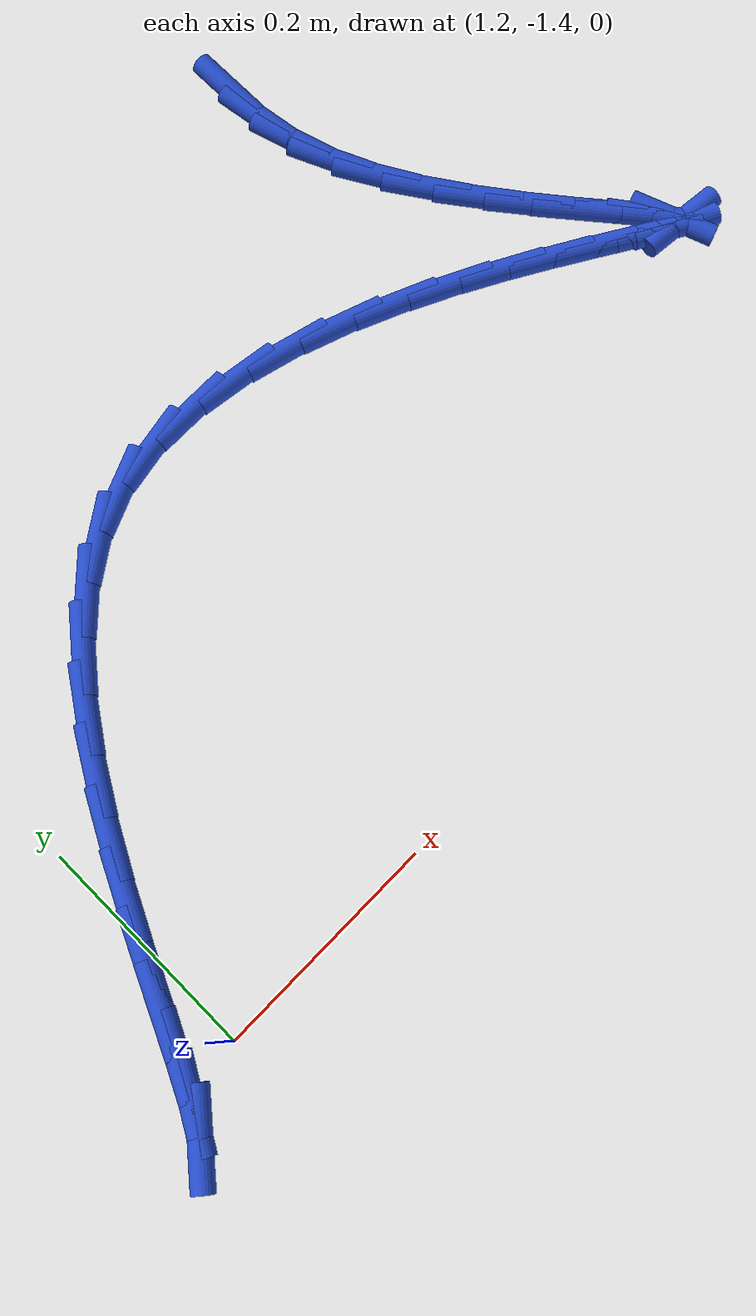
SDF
<sdf version="1.6">
 <world name="default">
  <model name="ground_plane">
   <static>1</static>
   <link name="link">
    <collision name="collision">
     <geometry><plane><normal>0 0 1</normal><size>100 100</size></plane></geometry>
     <surface><friction><ode><mu>100</mu><mu2>50</mu2></ode></friction></surface>
    </collision>
    <visual name="visual">
     <cast_shadows>0</cast_shadows>
     <geometry><plane><normal>0 0 1</normal><size>100 100</size></plane></geometry>
     <material>
      <script><uri>file://media/materials/scripts/gazebo.material</uri><name>Gazebo/WhiteGlow</name></script>
     </material>
    </visual>
   </link>
  </model>
  <model name="line">
   <link name="link_130">
    <pose>1.7752156417751612 -0.7982556049914572 0.01 0 1.57 1.5497536472109306</pose>
    <collision name="collision">
     <geometry><cylinder><radius>0.01</radius><length>0.08</length></cylinder></geometry>
    </collision>
    <visual name="visual">
     <material>
      <script><name>Gazebo/Blue</name><uri>file://media/materials/scripts/gazebo.material</uri></script>
     </material>
     <geometry><cylinder><radius>0.01</radius><length>0.08</length></cylinder></geometry>
    </visual>
   </link>
   <link name="link_131">
    <pose>1.7744203725148882 -0.8360431820624398 0.01 0 1.57 -1.450355094633576</pose>
    <collision name="collision">
     <geometry><cylinder><radius>0.01</radius><length>0.08</length></cylinder></geometry>
    </collision>
    <visual name="visual">
     <material>
      <script><name>Gazebo/Blue</name><uri>file://media/materials/scripts/gazebo.material</uri></script>
     </material>
     <geometry><cylinder><radius>0.01</radius><length>0.08</length></cylinder></geometry>
    </visual>
   </link>
   <link name="link_132">
    <pose>1.7790978041435388 -0.8746910152045829 0.01 0 1.57 -1.307838517691656</pose>
    <collision name="collision">
     <geometry><cylinder><radius>0.01</radius><length>0.08</length></cylinder></geometry>
    </collision>
    <visual name="visual">
     <material>
      <script><name>Gazebo/Blue</name><uri>file://media/materials/scripts/gazebo.material</uri></script>
     </material>
     <geometry><cylinder><radius>0.01</radius><length>0.08</length></cylinder></geometry>
    </visual>
   </link>
   <link name="link_133">
    <pose>1.7897375830611209 -0.9142160073864463 0.01 0 1.57 -1.1725079121888944</pose>
    <collision name="collision">
     <geometry><cylinder><radius>0.01</radius><length>0.08</length></cylinder></geometry>
    </collision>
    <visual name="visual">
     <material>
      <script><name>Gazebo/Blue</name><uri>file://media/materials/scripts/gazebo.material</uri></script>
     </material>
     <geometry><cylinder><radius>0.01</radius><length>0.08</length></cylinder></geometry>
    </visual>
   </link>
   <link name="link_134">
    <pose>1.8067232678781455 -0.954583421173247 0.01 0 1.57 -1.0672531473414502</pose>
    <collision name="collision">
     <geometry><cylinder><radius>0.01</radius><length>0.08</length></cylinder></geometry>
    </collision>
    <visual name="visual">
     <material>
      <script><name>Gazebo/Blue</name><uri>file://media/materials/scripts/gazebo.material</uri></script>
     </material>
     <geometry><cylinder><radius>0.01</radius><length>0.08</length></cylinder></geometry>
    </visual>
   </link>
   <link name="link_135">
    <pose>1.8290292264488128 -0.9950725666809562 0.01 0 1.57 -0.994632388908153</pose>
    <collision name="collision">
     <geometry><cylinder><radius>0.01</radius><length>0.08</length></cylinder></geometry>
    </collision>
    <visual name="visual">
     <material>
      <script><name>Gazebo/Blue</name><uri>file://media/materials/scripts/gazebo.material</uri></script>
     </material>
     <geometry><cylinder><radius>0.01</radius><length>0.08</length></cylinder></geometry>
    </visual>
   </link>
   <link name="link_136">
    <pose>1.8546295044779049 -1.0344758267409595 0.01 0 1.57 -0.9443669416919845</pose>
    <collision name="collision">
     <geometry><cylinder><radius>0.01</radius><length>0.08</length></cylinder></geometry>
    </collision>
    <visual name="visual">
     <material>
      <script><name>Gazebo/Blue</name><uri>file://media/materials/scripts/gazebo.material</uri></script>
     </material>
     <geometry><cylinder><radius>0.01</radius><length>0.08</length></cylinder></geometry>
    </visual>
   </link>
   <link name="link_137">
    <pose>1.8814768559889032 -1.071575220022894 0.01 0 1.57 -0.9110290481463422</pose>
    <collision name="collision">
     <geometry><cylinder><radius>0.01</radius><length>0.08</length></cylinder></geometry>
    </collision>
    <visual name="visual">
     <material>
      <script><name>Gazebo/Blue</name><uri>file://media/materials/scripts/gazebo.material</uri></script>
     </material>
     <geometry><cylinder><radius>0.01</radius><length>0.08</length></cylinder></geometry>
    </visual>
   </link>
   <link name="link_138">
    <pose>1.9075240350052878 -1.105152765196395 0.01 0 1.57 -0.8933213254224234</pose>
    <collision name="collision">
     <geometry><cylinder><radius>0.01</radius><length>0.08</length></cylinder></geometry>
    </collision>
    <visual name="visual">
     <material>
      <script><name>Gazebo/Blue</name><uri>file://media/materials/scripts/gazebo.material</uri></script>
     </material>
     <geometry><cylinder><radius>0.01</radius><length>0.08</length></cylinder></geometry>
    </visual>
   </link>
   <link name="link_139">
    <pose>1.9307237955505396 -1.1339904809310983 0.01 0 1.57 -0.8960241478766134</pose>
    <collision name="collision">
     <geometry><cylinder><radius>0.01</radius><length>0.08</length></cylinder></geometry>
    </collision>
    <visual name="visual">
     <material>
      <script><name>Gazebo/Blue</name><uri>file://media/materials/scripts/gazebo.material</uri></script>
     </material>
     <geometry><cylinder><radius>0.01</radius><length>0.08</length></cylinder></geometry>
    </visual>
   </link>
   <link name="link_140">
    <pose>1.9490288916481393 -1.15687038589664 0.01 0 1.57 -0.9444193747897286</pose>
    <collision name="collision">
     <geometry><cylinder><radius>0.01</radius><length>0.08</length></cylinder></geometry>
    </collision>
    <visual name="visual">
     <material>
      <script><name>Gazebo/Blue</name><uri>file://media/materials/scripts/gazebo.material</uri></script>
     </material>
     <geometry><cylinder><radius>0.01</radius><length>0.08</length></cylinder></geometry>
    </visual>
   </link>
   <link name="link_141">
    <pose>1.9603920773215664 -1.1725744987626545 0.01 0 1.57 -1.2457074776256203</pose>
    <collision name="collision">
     <geometry><cylinder><radius>0.01</radius><length>0.08</length></cylinder></geometry>
    </collision>
    <visual name="visual">
     <material>
      <script><name>Gazebo/Blue</name><uri>file://media/materials/scripts/gazebo.material</uri></script>
     </material>
     <geometry><cylinder><radius>0.01</radius><length>0.08</length></cylinder></geometry>
    </visual>
   </link>
   <link name="link_142">
    <pose>1.96289162147358 -1.179990516140487 0.01 0 1.57 -0.09060571116766082</pose>
    <collision name="collision">
     <geometry><cylinder><radius>0.01</radius><length>0.08</length></cylinder></geometry>
    </collision>
    <visual name="visual">
     <material>
      <script><name>Gazebo/Blue</name><uri>file://media/materials/scripts/gazebo.material</uri></script>
     </material>
     <geometry><cylinder><radius>0.01</radius><length>0.08</length></cylinder></geometry>
    </visual>
   </link>
   <link name="link_143">
    <pose>1.956245488506305 -1.1793866852694146 0.01 0 1.57 -0.4596246760732523</pose>
    <collision name="collision">
     <geometry><cylinder><radius>0.01</radius><length>0.08</length></cylinder></geometry>
    </collision>
    <visual name="visual">
     <material>
      <script><name>Gazebo/Blue</name><uri>file://media/materials/scripts/gazebo.material</uri></script>
     </material>
     <geometry><cylinder><radius>0.01</radius><length>0.08</length></cylinder></geometry>
    </visual>
   </link>
   <link name="link_144">
    <pose>1.9413220953461048 -1.1719998832077023 0.01 0 1.57 -0.5247100729460514</pose>
    <collision name="collision">
     <geometry><cylinder><radius>0.01</radius><length>0.08</length></cylinder></geometry>
    </collision>
    <visual name="visual">
     <material>
      <script><name>Gazebo/Blue</name><uri>file://media/materials/scripts/gazebo.material</uri></script>
     </material>
     <geometry><cylinder><radius>0.01</radius><length>0.08</length></cylinder></geometry>
    </visual>
   </link>
   <link name="link_145">
    <pose>1.9190136572722678 -1.1590870241675164 0.01 0 1.57 -0.5378943807420625</pose>
    <collision name="collision">
     <geometry><cylinder><radius>0.01</radius><length>0.08</length></cylinder></geometry>
    </collision>
    <visual name="visual">
     <material>
      <script><name>Gazebo/Blue</name><uri>file://media/materials/scripts/gazebo.material</uri></script>
     </material>
     <geometry><cylinder><radius>0.01</radius><length>0.08</length></cylinder></geometry>
    </visual>
   </link>
   <link name="link_146">
    <pose>1.890212389564082 -1.1419050223610245 0.01 0 1.57 -0.5308128728991153</pose>
    <collision name="collision">
     <geometry><cylinder><radius>0.01</radius><length>0.08</length></cylinder></geometry>
    </collision>
    <visual name="visual">
     <material>
      <script><name>Gazebo/Blue</name><uri>file://media/materials/scripts/gazebo.material</uri></script>
     </material>
     <geometry><cylinder><radius>0.01</radius><length>0.08</length></cylinder></geometry>
    </visual>
   </link>
   <link name="link_147">
    <pose>1.8558105075008353 -1.1217107920003921 0.01 0 1.57 -0.511417998323436</pose>
    <collision name="collision">
     <geometry><cylinder><radius>0.01</radius><length>0.08</length></cylinder></geometry>
    </collision>
    <visual name="visual">
     <material>
      <script><name>Gazebo/Blue</name><uri>file://media/materials/scripts/gazebo.material</uri></script>
     </material>
     <geometry><cylinder><radius>0.01</radius><length>0.08</length></cylinder></geometry>
    </visual>
   </link>
   <link name="link_148">
    <pose>1.8167002263618135 -1.0997612472977853 0.01 0 1.57 -0.48183035859719814</pose>
    <collision name="collision">
     <geometry><cylinder><radius>0.01</radius><length>0.08</length></cylinder></geometry>
    </collision>
    <visual name="visual">
     <material>
      <script><name>Gazebo/Blue</name><uri>file://media/materials/scripts/gazebo.material</uri></script>
     </material>
     <geometry><cylinder><radius>0.01</radius><length>0.08</length></cylinder></geometry>
    </visual>
   </link>
   <link name="link_149">
    <pose>1.7737737614263072 -1.0773133024653718 0.01 0 1.57 -0.4418540279635827</pose>
    <collision name="collision">
     <geometry><cylinder><radius>0.01</radius><length>0.08</length></cylinder></geometry>
    </collision>
    <visual name="visual">
     <material>
      <script><name>Gazebo/Blue</name><uri>file://media/materials/scripts/gazebo.material</uri></script>
     </material>
     <geometry><cylinder><radius>0.01</radius><length>0.08</length></cylinder></geometry>
    </visual>
   </link>
   <link name="link_150">
    <pose>1.727923327973602 -1.0556238717153168 0.01 0 1.57 -0.38985338865324237</pose>
    <collision name="collision">
     <geometry><cylinder><radius>0.01</radius><length>0.08</length></cylinder></geometry>
    </collision>
    <visual name="visual">
     <material>
      <script><name>Gazebo/Blue</name><uri>file://media/materials/scripts/gazebo.material</uri></script>
     </material>
     <geometry><cylinder><radius>0.01</radius><length>0.08</length></cylinder></geometry>
    </visual>
   </link>
   <link name="link_151">
    <pose>1.6800411412829868 -1.0359498692597882 0.01 0 1.57 -0.3228716082283962</pose>
    <collision name="collision">
     <geometry><cylinder><radius>0.01</radius><length>0.08</length></cylinder></geometry>
    </collision>
    <visual name="visual">
     <material>
      <script><name>Gazebo/Blue</name><uri>file://media/materials/scripts/gazebo.material</uri></script>
     </material>
     <geometry><cylinder><radius>0.01</radius><length>0.08</length></cylinder></geometry>
    </visual>
   </link>
   <link name="link_152">
    <pose>1.6310194166337488 -1.019548209310951 0.01 0 1.57 -0.23646273405884602</pose>
    <collision name="collision">
     <geometry><cylinder><radius>0.01</radius><length>0.08</length></cylinder></geometry>
    </collision>
    <visual name="visual">
     <material>
      <script><name>Gazebo/Blue</name><uri>file://media/materials/scripts/gazebo.material</uri></script>
     </material>
     <geometry><cylinder><radius>0.01</radius><length>0.08</length></cylinder></geometry>
    </visual>
   </link>
   <link name="link_153">
    <pose>1.5817503693051744 -1.0076758060809723 0.01 0 1.57 -0.12452129947367188</pose>
    <collision name="collision">
     <geometry><cylinder><radius>0.01</radius><length>0.08</length></cylinder></geometry>
    </collision>
    <visual name="visual">
     <material>
      <script><name>Gazebo/Blue</name><uri>file://media/materials/scripts/gazebo.material</uri></script>
     </material>
     <geometry><cylinder><radius>0.01</radius><length>0.08</length></cylinder></geometry>
    </visual>
   </link>
   <link name="link_154">
    <pose>1.5331262145765543 -1.0015895737820186 0.01 0 1.57 0.02031813913032761</pose>
    <collision name="collision">
     <geometry><cylinder><radius>0.01</radius><length>0.08</length></cylinder></geometry>
    </collision>
    <visual name="visual">
     <material>
      <script><name>Gazebo/Blue</name><uri>file://media/materials/scripts/gazebo.material</uri></script>
     </material>
     <geometry><cylinder><radius>0.01</radius><length>0.08</length></cylinder></geometry>
    </visual>
   </link>
   <link name="link_155">
    <pose>1.4860391677271745 -1.0025464266262567 0.01 0 1.57 0.2043899372434801</pose>
    <collision name="collision">
     <geometry><cylinder><radius>0.01</radius><length>0.08</length></cylinder></geometry>
    </collision>
    <visual name="visual">
     <material>
      <script><name>Gazebo/Blue</name><uri>file://media/materials/scripts/gazebo.material</uri></script>
     </material>
     <geometry><cylinder><radius>0.01</radius><length>0.08</length></cylinder></geometry>
    </visual>
   </link>
   <link name="link_156">
    <pose>1.4413814440363224 -1.0118032788258524 0.01 0 1.57 0.4205086428234418</pose>
    <collision name="collision">
     <geometry><cylinder><radius>0.01</radius><length>0.08</length></cylinder></geometry>
    </collision>
    <visual name="visual">
     <material>
      <script><name>Gazebo/Blue</name><uri>file://media/materials/scripts/gazebo.material</uri></script>
     </material>
     <geometry><cylinder><radius>0.01</radius><length>0.08</length></cylinder></geometry>
    </visual>
   </link>
   <link name="link_157">
    <pose>1.399943543227909 -1.0303335938810756 0.01 0 1.57 0.6153704891348529</pose>
    <collision name="collision">
     <geometry><cylinder><radius>0.01</radius><length>0.08</length></cylinder></geometry>
    </collision>
    <visual name="visual">
     <material>
      <script><name>Gazebo/Blue</name><uri>file://media/materials/scripts/gazebo.material</uri></script>
     </material>
     <geometry><cylinder><radius>0.01</radius><length>0.08</length></cylinder></geometry>
    </visual>
   </link>
   <link name="link_158">
    <pose>1.3618524517485835 -1.0572618230138109 0.01 0 1.57 0.768281327468766</pose>
    <collision name="collision">
     <geometry><cylinder><radius>0.01</radius><length>0.08</length></cylinder></geometry>
    </collision>
    <visual name="visual">
     <material>
      <script><name>Gazebo/Blue</name><uri>file://media/materials/scripts/gazebo.material</uri></script>
     </material>
     <geometry><cylinder><radius>0.01</radius><length>0.08</length></cylinder></geometry>
    </visual>
   </link>
   <link name="link_159">
    <pose>1.326969093164172 -1.090970980084679 0.01 0 1.57 0.88488534604028</pose>
    <collision name="collision">
     <geometry><cylinder><radius>0.01</radius><length>0.08</length></cylinder></geometry>
    </collision>
    <visual name="visual">
     <material>
      <script><name>Gazebo/Blue</name><uri>file://media/materials/scripts/gazebo.material</uri></script>
     </material>
     <geometry><cylinder><radius>0.01</radius><length>0.08</length></cylinder></geometry>
    </visual>
   </link>
   <link name="link_160">
    <pose>1.2951536781417898 -1.1298420923196428 0.01 0 1.57 0.9728836337338496</pose>
    <collision name="collision">
     <geometry><cylinder><radius>0.01</radius><length>0.08</length></cylinder></geometry>
    </collision>
    <visual name="visual">
     <material>
      <script><name>Gazebo/Blue</name><uri>file://media/materials/scripts/gazebo.material</uri></script>
     </material>
     <geometry><cylinder><radius>0.01</radius><length>0.08</length></cylinder></geometry>
    </visual>
   </link>
   <link name="link_161">
    <pose>1.2662664173485523 -1.1722561869446666 0.01 0 1.57 1.0387764312485954</pose>
    <collision name="collision">
     <geometry><cylinder><radius>0.01</radius><length>0.08</length></cylinder></geometry>
    </collision>
    <visual name="visual">
     <material>
      <script><name>Gazebo/Blue</name><uri>file://media/materials/scripts/gazebo.material</uri></script>
     </material>
     <geometry><cylinder><radius>0.01</radius><length>0.08</length></cylinder></geometry>
    </visual>
   </link>
   <link name="link_162">
    <pose>1.2401675214515733 -1.2165942911857142 0.01 0 1.57 1.087126844973864</pose>
    <collision name="collision">
     <geometry><cylinder><radius>0.01</radius><length>0.08</length></cylinder></geometry>
    </collision>
    <visual name="visual">
     <material>
      <script><name>Gazebo/Blue</name><uri>file://media/materials/scripts/gazebo.material</uri></script>
     </material>
     <geometry><cylinder><radius>0.01</radius><length>0.08</length></cylinder></geometry>
    </visual>
   </link>
   <link name="link_163">
    <pose>1.2167172011179705 -1.2612374322687483 0.01 0 1.57 1.120587850028859</pose>
    <collision name="collision">
     <geometry><cylinder><radius>0.01</radius><length>0.08</length></cylinder></geometry>
    </collision>
    <visual name="visual">
     <material>
      <script><name>Gazebo/Blue</name><uri>file://media/materials/scripts/gazebo.material</uri></script>
     </material>
     <geometry><cylinder><radius>0.01</radius><length>0.08</length></cylinder></geometry>
    </visual>
   </link>
   <link name="link_164">
    <pose>1.1957756670148578 -1.3045666374197329 0.01 0 1.57 1.1398569981338749</pose>
    <collision name="collision">
     <geometry><cylinder><radius>0.01</radius><length>0.08</length></cylinder></geometry>
    </collision>
    <visual name="visual">
     <material>
      <script><name>Gazebo/Blue</name><uri>file://media/materials/scripts/gazebo.material</uri></script>
     </material>
     <geometry><cylinder><radius>0.01</radius><length>0.08</length></cylinder></geometry>
    </visual>
   </link>
   <link name="link_165">
    <pose>1.1772031298093502 -1.3449629338646318 0.01 0 1.57 1.1430038233720132</pose>
    <collision name="collision">
     <geometry><cylinder><radius>0.01</radius><length>0.08</length></cylinder></geometry>
    </collision>
    <visual name="visual">
     <material>
      <script><name>Gazebo/Blue</name><uri>file://media/materials/scripts/gazebo.material</uri></script>
     </material>
     <geometry><cylinder><radius>0.01</radius><length>0.08</length></cylinder></geometry>
    </visual>
   </link>
   <link name="link_166">
    <pose>1.1608598001685628 -1.3808073488294095 0.01 0 1.57 1.122986001361727</pose>
    <collision name="collision">
     <geometry><cylinder><radius>0.01</radius><length>0.08</length></cylinder></geometry>
    </collision>
    <visual name="visual">
     <material>
      <script><name>Gazebo/Blue</name><uri>file://media/materials/scripts/gazebo.material</uri></script>
     </material>
     <geometry><cylinder><radius>0.01</radius><length>0.08</length></cylinder></geometry>
    </visual>
   </link>
   <link name="link_167">
    <pose>1.146605888759612 -1.4104809095400284 0.01 0 1.57 1.0585914770077516</pose>
    <collision name="collision">
     <geometry><cylinder><radius>0.01</radius><length>0.08</length></cylinder></geometry>
    </collision>
    <visual name="visual">
     <material>
      <script><name>Gazebo/Blue</name><uri>file://media/materials/scripts/gazebo.material</uri></script>
     </material>
     <geometry><cylinder><radius>0.01</radius><length>0.08</length></cylinder></geometry>
    </visual>
   </link>
   <link name="link_168">
    <pose>1.1343016062496125 -1.4323646432224528 0.01 0 1.57 0.8714085411420087</pose>
    <collision name="collision">
     <geometry><cylinder><radius>0.01</radius><length>0.08</length></cylinder></geometry>
    </collision>
    <visual name="visual">
     <material>
      <script><name>Gazebo/Blue</name><uri>file://media/materials/scripts/gazebo.material</uri></script>
     </material>
     <geometry><cylinder><radius>0.01</radius><length>0.08</length></cylinder></geometry>
    </visual>
   </link>
  </model>
 </world>
</sdf>
